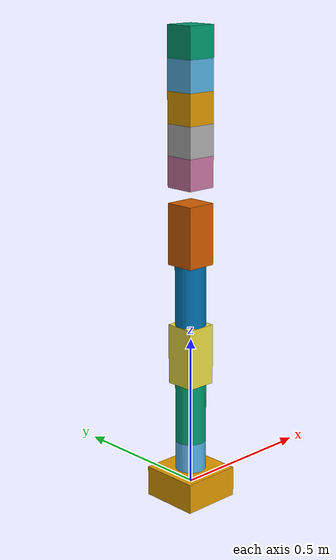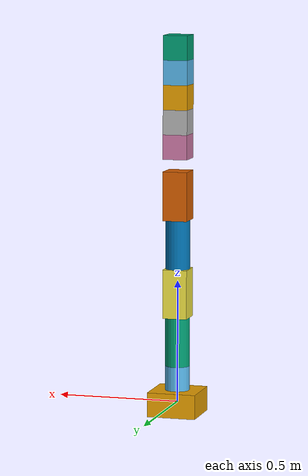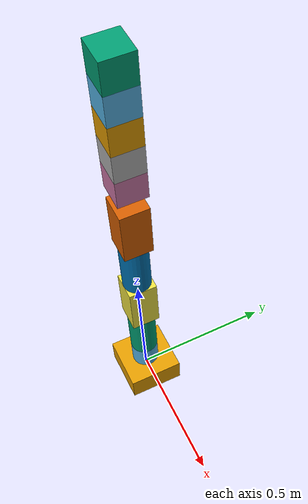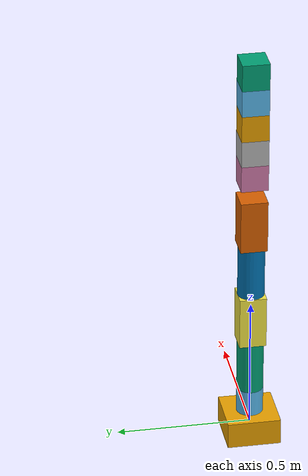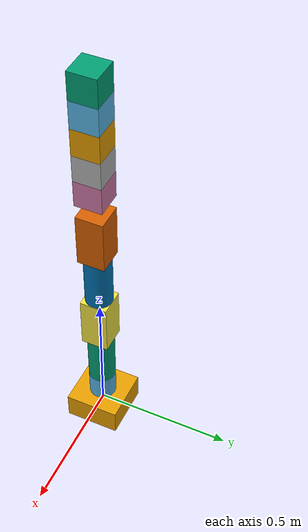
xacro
<robot name="robot_model">
  <!-- Base link -->
  <link name="base_link">
    <visual>
      <geometry>
        <box size="0.2 0.2 0.1"/>
      </geometry>
    </visual>
  </link>

  <!-- Joint and links: 10 links -->
  <joint name="joint_1" type="revolute">
    <parent link="base_link"/>
    <child link="link_1"/>
    <origin xyz="0 0 0.05" rpy="0 0 0"/>
    <axis xyz="0 0 1"/>
    <limit effort="10.0" lower="-1.5" upper="1.5" velocity="1.0"/>
  </joint>
  <link name="link_1">
    <visual>
      <geometry>
        <cylinder length="0.2" radius="0.05"/>
      </geometry>
    </visual>
  </link>

  <joint name="joint_2" type="revolute">
    <parent link="link_1"/>
    <child link="link_2"/>
    <origin xyz="0 0 0.2" rpy="0 0 0"/>
    <axis xyz="0 1 0"/>
    <limit effort="10.0" lower="-1.5" upper="1.5" velocity="1.0"/>
  </joint>
  <link name="link_2">
    <visual>
      <geometry>
        <cylinder length="0.2" radius="0.05"/>
      </geometry>
    </visual>
  </link>

  <joint name="joint_3" type="prismatic">
    <parent link="link_2"/>
    <child link="link_3"/>
    <origin xyz="0 0 0.2" rpy="0 0 0"/>
    <axis xyz="0 0 1"/>
    <limit effort="10.0" lower="0.0" upper="0.1" velocity="0.5"/>
  </joint>
  <link name="link_3">
    <visual>
      <geometry>
        <box size="0.1 0.1 0.2"/>
      </geometry>
    </visual>
  </link>

  <joint name="joint_4" type="revolute">
    <parent link="link_3"/>
    <child link="link_4"/>
    <origin xyz="0 0 0.2" rpy="0 0 0"/>
    <axis xyz="0 1 0"/>
    <limit effort="10.0" lower="-1.5" upper="1.5" velocity="1.0"/>
  </joint>
  <link name="link_4">
    <visual>
      <geometry>
        <cylinder length="0.2" radius="0.05"/>
      </geometry>
    </visual>
  </link>

  <joint name="joint_5" type="revolute">
    <parent link="link_4"/>
    <child link="link_5"/>
    <origin xyz="0 0 0.2" rpy="0 0 0"/>
    <axis xyz="0 0 1"/>
    <limit effort="10.0" lower="-1.5" upper="1.5" velocity="1.0"/>
  </joint>
  <link name="link_5">
    <visual>
      <geometry>
        <box size="0.1 0.1 0.2"/>
      </geometry>
    </visual>
  </link>

  <!-- Fixed joints: link_6 to link_10 -->
  <joint name="joint_6" type="fixed">
    <parent link="link_5"/>
    <child link="link_6"/>
    <origin xyz="0 0 0.2" rpy="0 0 0"/>
  </joint>
  <link name="link_6">
    <visual>
      <geometry>
        <box size="0.1 0.1 0.1"/>
      </geometry>
    </visual>
  </link>

  <joint name="joint_7" type="fixed">
    <parent link="link_6"/>
    <child link="link_7"/>
    <origin xyz="0 0 0.1" rpy="0 0 0"/>
  </joint>
  <link name="link_7">
    <visual>
      <geometry>
        <box size="0.1 0.1 0.1"/>
      </geometry>
    </visual>
  </link>

  <joint name="joint_8" type="fixed">
    <parent link="link_7"/>
    <child link="link_8"/>
    <origin xyz="0 0 0.1" rpy="0 0 0"/>
  </joint>
  <link name="link_8">
    <visual>
      <geometry>
        <box size="0.1 0.1 0.1"/>
      </geometry>
    </visual>
  </link>

  <joint name="joint_9" type="fixed">
    <parent link="link_8"/>
    <child link="link_9"/>
    <origin xyz="0 0 0.1" rpy="0 0 0"/>
  </joint>
  <link name="link_9">
    <visual>
      <geometry>
        <box size="0.1 0.1 0.1"/>
      </geometry>
    </visual>
  </link>

  <joint name="joint_10" type="fixed">
    <parent link="link_9"/>
    <child link="link_10"/>
    <origin xyz="0 0 0.1" rpy="0 0 0"/>
  </joint>
  <link name="link_10">
    <visual>
      <geometry>
        <box size="0.1 0.1 0.1"/>
      </geometry>
    </visual>
  </link>
</robot>
